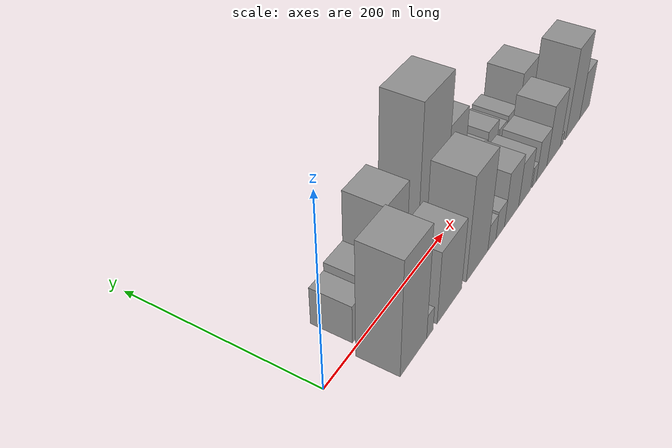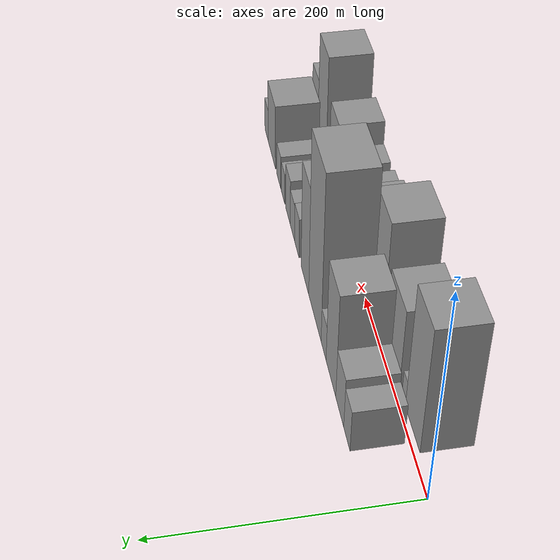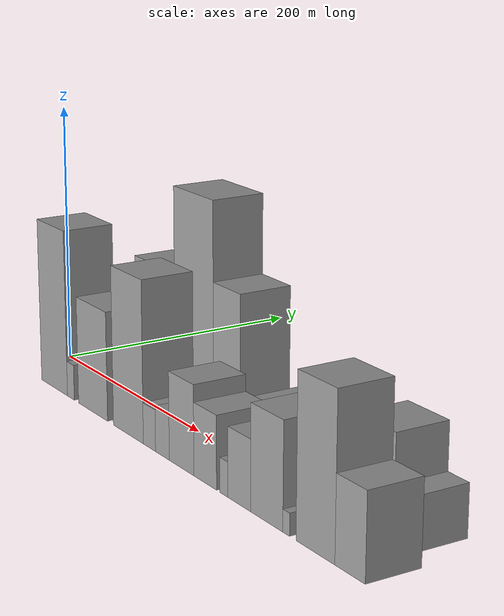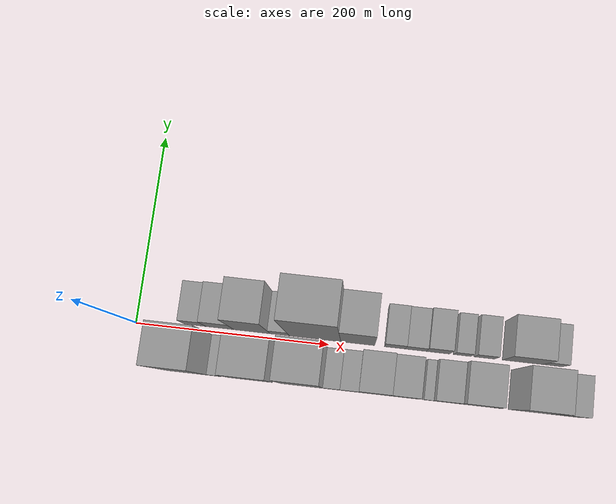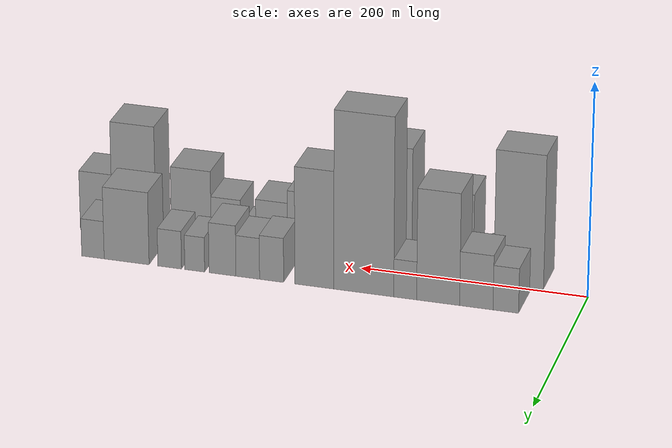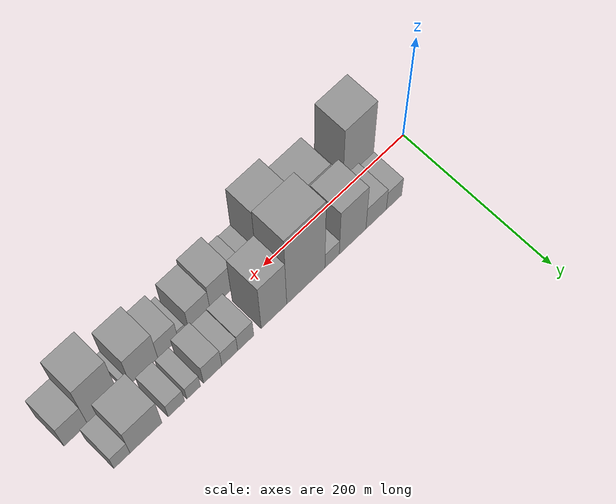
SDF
<sdf version="1.6">
 <world name="default">
  <scene>
   <sky><clouds><speed>12</speed></clouds></sky>
   <ambient>0.4 0.4 0.4 1</ambient>
   <background>0.7 0.7 0.7 1</background>
   <shadows>1</shadows>
  </scene>
  <gravity>0 0 -9.8066</gravity>
  <magnetic_field>6e-06 2.3e-05 -4.2e-05</magnetic_field>
  <physics default="0" name="default_physics" type="ode">
   <ode>
    <solver>
     <type>quick</type>
     <iters>10</iters>
     <sor>1.0</sor>
     <use_dynamic_moi_rescaling>0</use_dynamic_moi_rescaling>
    </solver>
    <constraints>
     <cfm>0</cfm>
     <erp>0.2</erp>
     <contact_max_correcting_vel>100</contact_max_correcting_vel>
     <contact_surface_layer>0.001</contact_surface_layer>
    </constraints>
   </ode>
   <max_step_size>0.004</max_step_size>
   <real_time_factor>1</real_time_factor>
   <real_time_update_rate>250</real_time_update_rate>
  </physics>
  <light name="sun" type="directional">
   <pose>0 0 10 0 0 0</pose>
   <diffuse>0.8 0.8 0.8 1</diffuse>
   <specular>0.2 0.2 0.2 1</specular>
   <attenuation>
    <range>1000</range>
    <constant>0.9</constant>
    <linear>0.01</linear>
    <quadratic>0.001</quadratic>
   </attenuation>
   <direction>-0.5 0.1 -0.9</direction>
  </light>
  <model name="building_1">
   <static>1</static>
   <pose>61.0747 24.5000 0 0.000000 0.000000 1.570796</pose>
   <link name="link">
    <pose>0 0 21.00 0 0 0</pose>
    <collision name="collision"><geometry><box><size>40.0000 22.1494 42.0000</size></box></geometry></collision>
    <visual name="visual">
     <cast_shadows>0</cast_shadows>
     <geometry><box><size>40.0000 22.1494 42.0000</size></box></geometry>
     <material>
      <script>
       <uri>model://grey_wall/materials/scripts</uri>
       <uri>model://grey_wall/materials/textures</uri>
       <name>vrc/grey_wall</name>
      </script>
     </material>
    </visual>
   </link>
  </model>
  <model name="building_2">
   <static>1</static>
   <pose>86.7216 24.5000 0 0.000000 0.000000 1.570796</pose>
   <link name="link">
    <pose>0 0 25.50 0 0 0</pose>
    <collision name="collision"><geometry><box><size>40.0000 29.1444 51.0000</size></box></geometry></collision>
    <visual name="visual">
     <cast_shadows>0</cast_shadows>
     <geometry><box><size>40.0000 29.1444 51.0000</size></box></geometry>
     <material>
      <script>
       <uri>model://grey_wall/materials/scripts</uri>
       <uri>model://grey_wall/materials/textures</uri>
       <name>vrc/grey_wall</name>
      </script>
     </material>
    </visual>
   </link>
  </model>
  <model name="building_3">
   <static>1</static>
   <pose>120.1111 24.5000 0 0.000000 0.000000 1.570796</pose>
   <link name="link">
    <pose>0 0 52.50 0 0 0</pose>
    <collision name="collision"><geometry><box><size>40.0000 37.6346 105.0000</size></box></geometry></collision>
    <visual name="visual">
     <cast_shadows>0</cast_shadows>
     <geometry><box><size>40.0000 37.6346 105.0000</size></box></geometry>
     <material>
      <script>
       <uri>model://grey_wall/materials/scripts</uri>
       <uri>model://grey_wall/materials/textures</uri>
       <name>vrc/grey_wall</name>
      </script>
     </material>
    </visual>
   </link>
  </model>
  <model name="building_4">
   <static>1</static>
   <pose>149.0038 24.5000 0 0.000000 0.000000 1.570796</pose>
   <link name="link">
    <pose>0 0 18.00 0 0 0</pose>
    <collision name="collision"><geometry><box><size>40.0000 20.1508 36.0000</size></box></geometry></collision>
    <visual name="visual">
     <cast_shadows>0</cast_shadows>
     <geometry><box><size>40.0000 20.1508 36.0000</size></box></geometry>
     <material>
      <script>
       <uri>model://grey_wall/materials/scripts</uri>
       <uri>model://grey_wall/materials/textures</uri>
       <name>vrc/grey_wall</name>
      </script>
     </material>
    </visual>
   </link>
  </model>
  <model name="building_5">
   <static>1</static>
   <pose>185.5101 24.5000 0 0.000000 0.000000 1.570796</pose>
   <link name="link">
    <pose>0 0 84.00 0 0 0</pose>
    <collision name="collision"><geometry><box><size>40.0000 52.8618 168.0000</size></box></geometry></collision>
    <visual name="visual">
     <cast_shadows>0</cast_shadows>
     <geometry><box><size>40.0000 52.8618 168.0000</size></box></geometry>
     <material>
      <script>
       <uri>model://grey_wall/materials/scripts</uri>
       <uri>model://grey_wall/materials/textures</uri>
       <name>vrc/grey_wall</name>
      </script>
     </material>
    </visual>
   </link>
  </model>
  <model name="building_6">
   <static>1</static>
   <pose>229.3432 24.5000 0 0.000000 0.000000 1.570796</pose>
   <link name="link">
    <pose>0 0 55.50 0 0 0</pose>
    <collision name="collision"><geometry><box><size>40.0000 34.8044 111.0000</size></box></geometry></collision>
    <visual name="visual">
     <cast_shadows>0</cast_shadows>
     <geometry><box><size>40.0000 34.8044 111.0000</size></box></geometry>
     <material>
      <script>
       <uri>model://grey_wall/materials/scripts</uri>
       <uri>model://grey_wall/materials/textures</uri>
       <name>vrc/grey_wall</name>
      </script>
     </material>
    </visual>
   </link>
  </model>
  <model name="building_7">
   <static>1</static>
   <pose>267.5260 24.5000 0 0.000000 0.000000 1.570796</pose>
   <link name="link">
    <pose>0 0 21.00 0 0 0</pose>
    <collision name="collision"><geometry><box><size>40.0000 21.5611 42.0000</size></box></geometry></collision>
    <visual name="visual">
     <cast_shadows>0</cast_shadows>
     <geometry><box><size>40.0000 21.5611 42.0000</size></box></geometry>
     <material>
      <script>
       <uri>model://grey_wall/materials/scripts</uri>
       <uri>model://grey_wall/materials/textures</uri>
       <name>vrc/grey_wall</name>
      </script>
     </material>
    </visual>
   </link>
  </model>
  <model name="building_8">
   <static>1</static>
   <pose>288.9002 24.5000 0 0.000000 0.000000 1.570796</pose>
   <link name="link">
    <pose>0 0 19.50 0 0 0</pose>
    <collision name="collision"><geometry><box><size>40.0000 21.1873 39.0000</size></box></geometry></collision>
    <visual name="visual">
     <cast_shadows>0</cast_shadows>
     <geometry><box><size>40.0000 21.1873 39.0000</size></box></geometry>
     <material>
      <script>
       <uri>model://grey_wall/materials/scripts</uri>
       <uri>model://grey_wall/materials/textures</uri>
       <name>vrc/grey_wall</name>
      </script>
     </material>
    </visual>
   </link>
  </model>
  <model name="building_9">
   <static>1</static>
   <pose>311.6176 24.5000 0 0.000000 0.000000 1.570796</pose>
   <link name="link">
    <pose>0 0 24.00 0 0 0</pose>
    <collision name="collision"><geometry><box><size>40.0000 24.2476 48.0000</size></box></geometry></collision>
    <visual name="visual">
     <cast_shadows>0</cast_shadows>
     <geometry><box><size>40.0000 24.2476 48.0000</size></box></geometry>
     <material>
      <script>
       <uri>model://grey_wall/materials/scripts</uri>
       <uri>model://grey_wall/materials/textures</uri>
       <name>vrc/grey_wall</name>
      </script>
     </material>
    </visual>
   </link>
  </model>
  <model name="building_10">
   <static>1</static>
   <pose>336.6975 24.5000 0 0.000000 0.000000 1.570796</pose>
   <link name="link">
    <pose>0 0 16.50 0 0 0</pose>
    <collision name="collision"><geometry><box><size>40.0000 17.9122 33.0000</size></box></geometry></collision>
    <visual name="visual">
     <cast_shadows>0</cast_shadows>
     <geometry><box><size>40.0000 17.9122 33.0000</size></box></geometry>
     <material>
      <script>
       <uri>model://grey_wall/materials/scripts</uri>
       <uri>model://grey_wall/materials/textures</uri>
       <name>vrc/grey_wall</name>
      </script>
     </material>
    </visual>
   </link>
  </model>
  <model name="building_11">
   <static>1</static>
   <pose>359.3681 24.5000 0 0.000000 0.000000 1.570796</pose>
   <link name="link">
    <pose>0 0 18.00 0 0 0</pose>
    <collision name="collision"><geometry><box><size>40.0000 21.4290 36.0000</size></box></geometry></collision>
    <visual name="visual">
     <cast_shadows>0</cast_shadows>
     <geometry><box><size>40.0000 21.4290 36.0000</size></box></geometry>
     <material>
      <script>
       <uri>model://grey_wall/materials/scripts</uri>
       <uri>model://grey_wall/materials/textures</uri>
       <name>vrc/grey_wall</name>
      </script>
     </material>
    </visual>
   </link>
  </model>
  <model name="building_12">
   <static>1</static>
   <pose>398.5924 24.5000 0 0.000000 0.000000 1.570796</pose>
   <link name="link">
    <pose>0 0 34.50 0 0 0</pose>
    <collision name="collision"><geometry><box><size>40.0000 41.0194 69.0000</size></box></geometry></collision>
    <visual name="visual">
     <cast_shadows>0</cast_shadows>
     <geometry><box><size>40.0000 41.0194 69.0000</size></box></geometry>
     <material>
      <script>
       <uri>model://grey_wall/materials/scripts</uri>
       <uri>model://grey_wall/materials/textures</uri>
       <name>vrc/grey_wall</name>
      </script>
     </material>
    </visual>
   </link>
  </model>
  <model name="building_13">
   <static>1</static>
   <pose>429.3703 24.5000 0 0.000000 0.000000 1.570796</pose>
   <link name="link">
    <pose>0 0 18.00 0 0 0</pose>
    <collision name="collision"><geometry><box><size>40.0000 20.5363 36.0000</size></box></geometry></collision>
    <visual name="visual">
     <cast_shadows>0</cast_shadows>
     <geometry><box><size>40.0000 20.5363 36.0000</size></box></geometry>
     <material>
      <script>
       <uri>model://grey_wall/materials/scripts</uri>
       <uri>model://grey_wall/materials/textures</uri>
       <name>vrc/grey_wall</name>
      </script>
     </material>
    </visual>
   </link>
  </model>
  <model name="building_14">
   <static>1</static>
   <pose>61.8601 -24.5000 0 0.000000 0.000000 1.570796</pose>
   <link name="link">
    <pose>0 0 63.00 0 0 0</pose>
    <collision name="collision"><geometry><box><size>40.0000 43.7202 126.0000</size></box></geometry></collision>
    <visual name="visual">
     <cast_shadows>0</cast_shadows>
     <geometry><box><size>40.0000 43.7202 126.0000</size></box></geometry>
     <material>
      <script>
       <uri>model://grey_wall/materials/scripts</uri>
       <uri>model://grey_wall/materials/textures</uri>
       <name>vrc/grey_wall</name>
      </script>
     </material>
    </visual>
   </link>
  </model>
  <model name="building_15">
   <static>1</static>
   <pose>89.3301 -24.5000 0 0.000000 0.000000 1.570796</pose>
   <link name="link">
    <pose>0 0 13.50 0 0 0</pose>
    <collision name="collision"><geometry><box><size>40.0000 11.2198 27.0000</size></box></geometry></collision>
    <visual name="visual">
     <cast_shadows>0</cast_shadows>
     <geometry><box><size>40.0000 11.2198 27.0000</size></box></geometry>
     <material>
      <script>
       <uri>model://grey_wall/materials/scripts</uri>
       <uri>model://grey_wall/materials/textures</uri>
       <name>vrc/grey_wall</name>
      </script>
     </material>
    </visual>
   </link>
  </model>
  <model name="building_16">
   <static>1</static>
   <pose>124.6381 -24.5000 0 0.000000 0.000000 1.570796</pose>
   <link name="link">
    <pose>0 0 40.50 0 0 0</pose>
    <collision name="collision"><geometry><box><size>40.0000 45.3961 81.0000</size></box></geometry></collision>
    <visual name="visual">
     <cast_shadows>0</cast_shadows>
     <geometry><box><size>40.0000 45.3961 81.0000</size></box></geometry>
     <material>
      <script>
       <uri>model://grey_wall/materials/scripts</uri>
       <uri>model://grey_wall/materials/textures</uri>
       <name>vrc/grey_wall</name>
      </script>
     </material>
    </visual>
   </link>
  </model>
  <model name="building_17">
   <static>1</static>
   <pose>178.1045 -24.5000 0 0.000000 0.000000 1.570796</pose>
   <link name="link">
    <pose>0 0 58.50 0 0 0</pose>
    <collision name="collision"><geometry><box><size>40.0000 43.5367 117.0000</size></box></geometry></collision>
    <visual name="visual">
     <cast_shadows>0</cast_shadows>
     <geometry><box><size>40.0000 43.5367 117.0000</size></box></geometry>
     <material>
      <script>
       <uri>model://grey_wall/materials/scripts</uri>
       <uri>model://grey_wall/materials/textures</uri>
       <name>vrc/grey_wall</name>
      </script>
     </material>
    </visual>
   </link>
  </model>
  <model name="building_18">
   <static>1</static>
   <pose>208.4296 -24.5000 0 0.000000 0.000000 1.570796</pose>
   <link name="link">
    <pose>0 0 15.00 0 0 0</pose>
    <collision name="collision"><geometry><box><size>40.0000 17.1135 30.0000</size></box></geometry></collision>
    <visual name="visual">
     <cast_shadows>0</cast_shadows>
     <geometry><box><size>40.0000 17.1135 30.0000</size></box></geometry>
     <material>
      <script>
       <uri>model://grey_wall/materials/scripts</uri>
       <uri>model://grey_wall/materials/textures</uri>
       <name>vrc/grey_wall</name>
      </script>
     </material>
    </visual>
   </link>
  </model>
  <model name="building_19">
   <static>1</static>
   <pose>226.3941 -24.5000 0 0.000000 0.000000 1.570796</pose>
   <link name="link">
    <pose>0 0 16.50 0 0 0</pose>
    <collision name="collision"><geometry><box><size>40.0000 18.8155 33.0000</size></box></geometry></collision>
    <visual name="visual">
     <cast_shadows>0</cast_shadows>
     <geometry><box><size>40.0000 18.8155 33.0000</size></box></geometry>
     <material>
      <script>
       <uri>model://grey_wall/materials/scripts</uri>
       <uri>model://grey_wall/materials/textures</uri>
       <name>vrc/grey_wall</name>
      </script>
     </material>
    </visual>
   </link>
  </model>
  <model name="building_20">
   <static>1</static>
   <pose>251.9429 -24.5000 0 0.000000 0.000000 1.570796</pose>
   <link name="link">
    <pose>0 0 31.50 0 0 0</pose>
    <collision name="collision"><geometry><box><size>40.0000 32.2822 63.0000</size></box></geometry></collision>
    <visual name="visual">
     <cast_shadows>0</cast_shadows>
     <geometry><box><size>40.0000 32.2822 63.0000</size></box></geometry>
     <material>
      <script>
       <uri>model://grey_wall/materials/scripts</uri>
       <uri>model://grey_wall/materials/textures</uri>
       <name>vrc/grey_wall</name>
      </script>
     </material>
    </visual>
   </link>
  </model>
  <model name="building_21">
   <static>1</static>
   <pose>282.3737 -24.5000 0 0.000000 0.000000 1.570796</pose>
   <link name="link">
    <pose>0 0 25.50 0 0 0</pose>
    <collision name="collision"><geometry><box><size>40.0000 28.5793 51.0000</size></box></geometry></collision>
    <visual name="visual">
     <cast_shadows>0</cast_shadows>
     <geometry><box><size>40.0000 28.5793 51.0000</size></box></geometry>
     <material>
      <script>
       <uri>model://grey_wall/materials/scripts</uri>
       <uri>model://grey_wall/materials/textures</uri>
       <name>vrc/grey_wall</name>
      </script>
     </material>
    </visual>
   </link>
  </model>
  <model name="building_22">
   <static>1</static>
   <pose>305.6026 -24.5000 0 0.000000 0.000000 1.570796</pose>
   <link name="link">
    <pose>0 0 12.00 0 0 0</pose>
    <collision name="collision"><geometry><box><size>40.0000 9.8786 24.0000</size></box></geometry></collision>
    <visual name="visual">
     <cast_shadows>0</cast_shadows>
     <geometry><box><size>40.0000 9.8786 24.0000</size></box></geometry>
     <material>
      <script>
       <uri>model://grey_wall/materials/scripts</uri>
       <uri>model://grey_wall/materials/textures</uri>
       <name>vrc/grey_wall</name>
      </script>
     </material>
    </visual>
   </link>
  </model>
  <model name="building_23">
   <static>1</static>
   <pose>323.9527 -24.5000 0 0.000000 0.000000 1.570796</pose>
   <link name="link">
    <pose>0 0 24.00 0 0 0</pose>
    <collision name="collision"><geometry><box><size>40.0000 26.8215 48.0000</size></box></geometry></collision>
    <visual name="visual">
     <cast_shadows>0</cast_shadows>
     <geometry><box><size>40.0000 26.8215 48.0000</size></box></geometry>
     <material>
      <script>
       <uri>model://grey_wall/materials/scripts</uri>
       <uri>model://grey_wall/materials/textures</uri>
       <name>vrc/grey_wall</name>
      </script>
     </material>
    </visual>
   </link>
  </model>
  <model name="building_24">
   <static>1</static>
   <pose>355.5127 -24.5000 0 0.000000 0.000000 1.570796</pose>
   <link name="link">
    <pose>0 0 36.00 0 0 0</pose>
    <collision name="collision"><geometry><box><size>40.0000 36.2985 72.0000</size></box></geometry></collision>
    <visual name="visual">
     <cast_shadows>0</cast_shadows>
     <geometry><box><size>40.0000 36.2985 72.0000</size></box></geometry>
     <material>
      <script>
       <uri>model://grey_wall/materials/scripts</uri>
       <uri>model://grey_wall/materials/textures</uri>
       <name>vrc/grey_wall</name>
      </script>
     </material>
    </visual>
   </link>
  </model>
  <model name="building_25">
   <static>1</static>
   <pose>377.3419 -24.5000 0 0.000000 0.000000 1.570796</pose>
   <link name="link">
    <pose>0 0 7.50 0 0 0</pose>
    <collision name="collision"><geometry><box><size>40.0000 7.3600 15.0000</size></box></geometry></collision>
    <visual name="visual">
     <cast_shadows>0</cast_shadows>
     <geometry><box><size>40.0000 7.3600 15.0000</size></box></geometry>
     <material>
      <script>
       <uri>model://grey_wall/materials/scripts</uri>
       <uri>model://grey_wall/materials/textures</uri>
       <name>vrc/grey_wall</name>
      </script>
     </material>
    </visual>
   </link>
  </model>
  <model name="building_26">
   <static>1</static>
   <pose>408.1288 -24.5000 0 0.000000 0.000000 1.570796</pose>
   <link name="link">
    <pose>0 0 54.00 0 0 0</pose>
    <collision name="collision"><geometry><box><size>40.0000 40.2138 108.0000</size></box></geometry></collision>
    <visual name="visual">
     <cast_shadows>0</cast_shadows>
     <geometry><box><size>40.0000 40.2138 108.0000</size></box></geometry>
     <material>
      <script>
       <uri>model://grey_wall/materials/scripts</uri>
       <uri>model://grey_wall/materials/textures</uri>
       <name>vrc/grey_wall</name>
      </script>
     </material>
    </visual>
   </link>
  </model>
  <model name="building_27">
   <static>1</static>
   <pose>443.1561 -24.5000 0 0.000000 0.000000 1.570796</pose>
   <link name="link">
    <pose>0 0 28.50 0 0 0</pose>
    <collision name="collision"><geometry><box><size>40.0000 29.8408 57.0000</size></box></geometry></collision>
    <visual name="visual">
     <cast_shadows>0</cast_shadows>
     <geometry><box><size>40.0000 29.8408 57.0000</size></box></geometry>
     <material>
      <script>
       <uri>model://grey_wall/materials/scripts</uri>
       <uri>model://grey_wall/materials/textures</uri>
       <name>vrc/grey_wall</name>
      </script>
     </material>
    </visual>
   </link>
  </model>
 </world>
</sdf>
